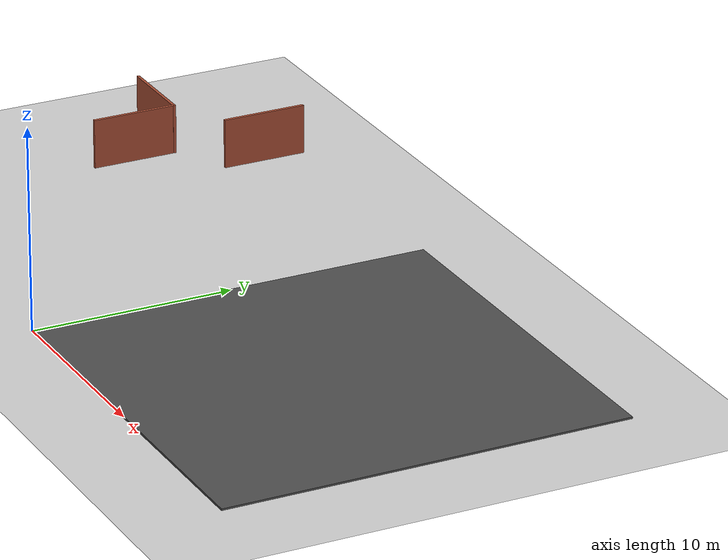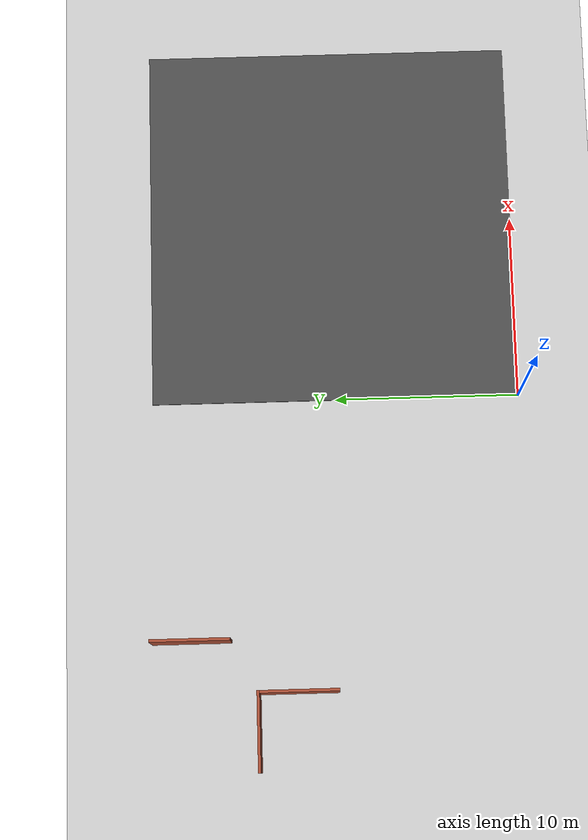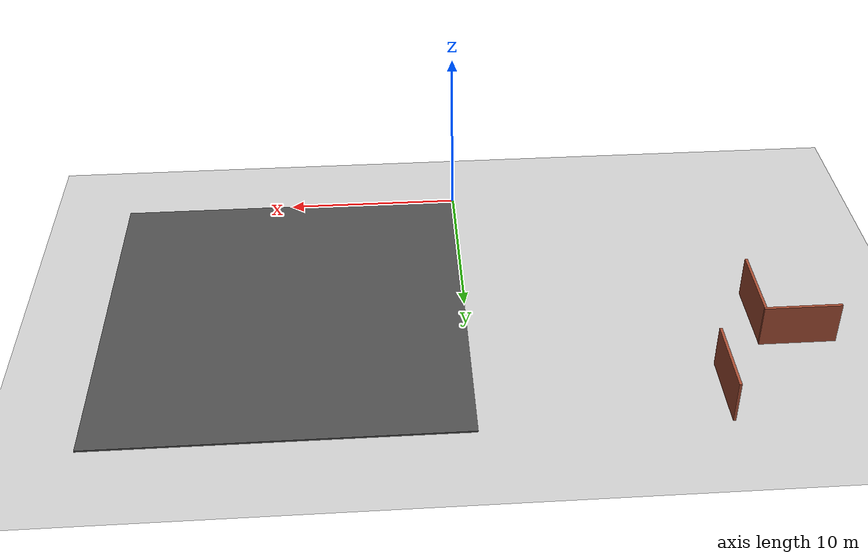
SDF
<sdf version="1.6">
 <world name="default">
  <model name="ground_plane">
   <static>1</static>
   <link name="link">
    <collision name="collision">
     <geometry><plane><normal>0 0 1</normal><size>100 100</size></plane></geometry>
     <surface><friction><ode><mu>100</mu><mu2>50</mu2></ode></friction></surface>
    </collision>
    <visual name="visual">
     <cast_shadows>0</cast_shadows>
     <geometry><plane><normal>0 0 1</normal><size>100 100</size></plane></geometry>
     <material>
      <script><uri>file://media/materials/scripts/gazebo.material</uri><name>Gazebo/Grey</name></script>
     </material>
    </visual>
   </link>
  </model>
  <model name="asphalt_plane">
   <static>1</static>
   <link name="link">
    <collision name="collision"><geometry><box><size>20 20 0.1</size></box></geometry></collision>
    <visual name="visual">
     <cast_shadows>0</cast_shadows>
     <geometry><box><size>20 20 0.1</size></box></geometry>
     <material>
      <script>
       <uri>model://asphalt_plane/materials/scripts</uri>
       <uri>model://asphalt_plane/materials/textures</uri>
       <name>vrc/asphalt</name>
      </script>
     </material>
    </visual>
   </link>
   <pose>10 10 0 0 -0 0</pose>
  </model>
  <model name="worlds_1_clone_0_clone_clone_0_clone">
   <pose>-17.8162 14.4688 0 0 0 -1.57092</pose>
   <link name="brick_longwall_wall_0">
    <collision name="brick_longwall_wall_0_Collision">
     <geometry><box><size>4.25 0.15 2.5</size></box></geometry>
     <pose>0 0 1.25 0 -0 0</pose>
    </collision>
    <visual name="brick_longwall_wall_0_Visual">
     <pose>0 0 1.25 0 -0 0</pose>
     <geometry><box><size>4.25 0.15 2.5</size></box></geometry>
     <material>
      <script><uri>file://media/materials/scripts/gazebo.material</uri><name>Gazebo/Bricks</name></script>
      <ambient>1 1 1 1</ambient>
     </material>
    </visual>
    <pose>0 -0 0 0 -0 1.5708</pose>
   </link>
   <static>1</static>
  </model>
  <model name="worlds_1_clone_1">
   <pose>-13 18 0 0 -0 0</pose>
   <link name="brick_longwall_wall_0">
    <collision name="brick_longwall_wall_0_Collision">
     <geometry><box><size>4.25 0.15 2.5</size></box></geometry>
     <pose>0 0 1.25 0 -0 0</pose>
    </collision>
    <visual name="brick_longwall_wall_0_Visual">
     <pose>0 0 1.25 0 -0 0</pose>
     <geometry><box><size>4.25 0.15 2.5</size></box></geometry>
     <material>
      <script><uri>file://media/materials/scripts/gazebo.material</uri><name>Gazebo/Bricks</name></script>
      <ambient>1 1 1 1</ambient>
     </material>
    </visual>
    <pose>0 -0 0 0 -0 1.5708</pose>
   </link>
   <static>1</static>
  </model>
  <model name="worlds_1_clone_1_clone">
   <pose>-15.7734 12.3225 0 0 -0 0</pose>
   <link name="brick_longwall_wall_0">
    <collision name="brick_longwall_wall_0_Collision">
     <geometry><box><size>4.25 0.15 2.5</size></box></geometry>
     <pose>0 0 1.25 0 -0 0</pose>
    </collision>
    <visual name="brick_longwall_wall_0_Visual">
     <pose>0 0 1.25 0 -0 0</pose>
     <geometry><box><size>4.25 0.15 2.5</size></box></geometry>
     <material>
      <script><uri>file://media/materials/scripts/gazebo.material</uri><name>Gazebo/Bricks</name></script>
      <ambient>1 1 1 1</ambient>
     </material>
    </visual>
    <pose>0 -0 0 0 -0 1.5708</pose>
   </link>
   <static>1</static>
  </model>
 </world>
</sdf>
